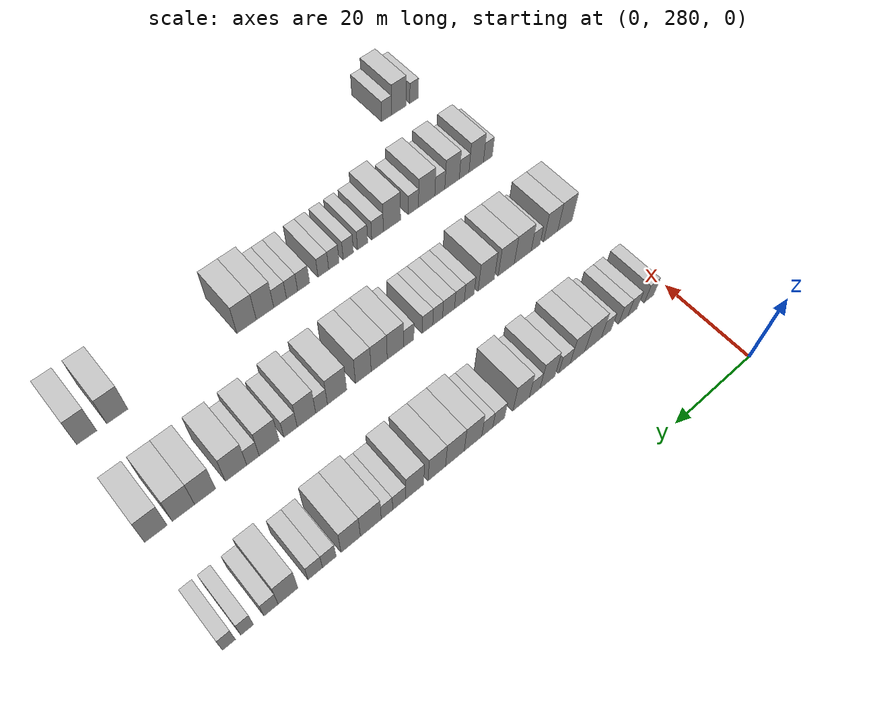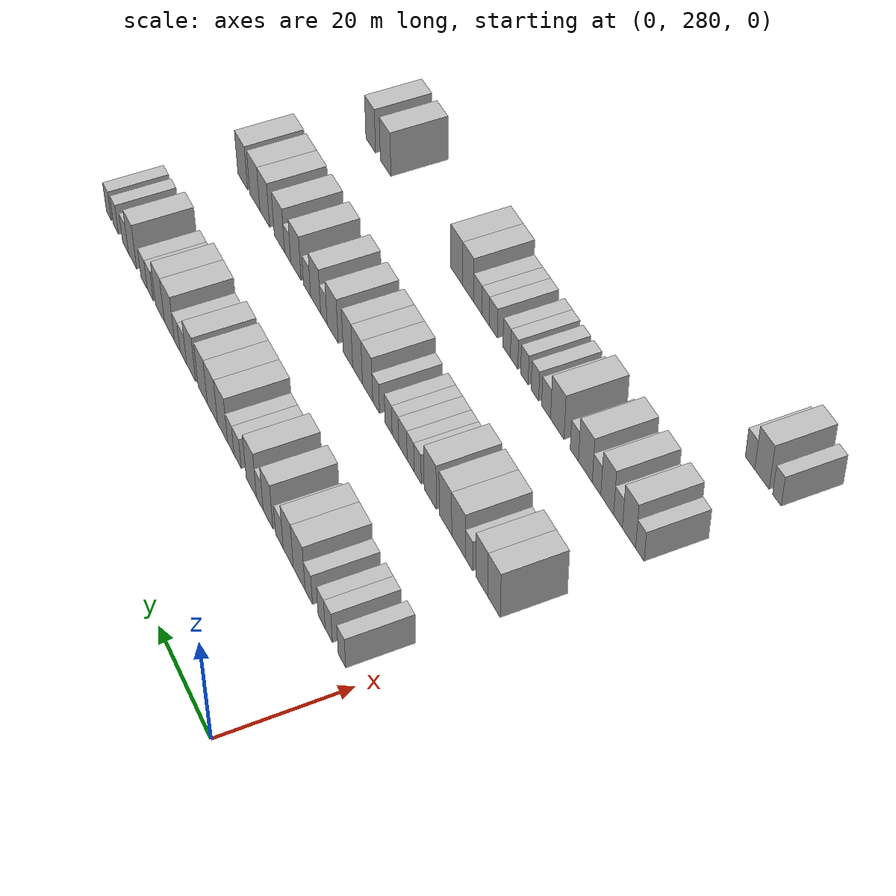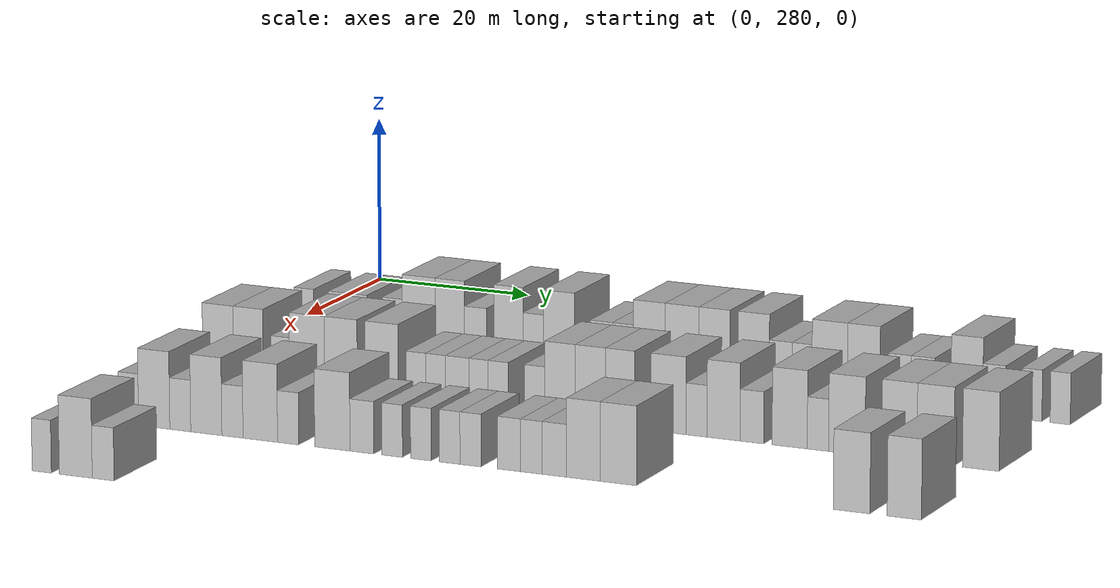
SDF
<sdf version="1.6">
 <world name="default">
  <model name="building_154">
   <static>1</static>
   <pose>25.0000 284.6553 0 0.000000 0.000000 0.000000</pose>
   <link name="link">
    <pose>0 0 3.00 0 0 0</pose>
    <collision name="collision"><geometry><box><size>10.0000 2.5857 6.0000</size></box></geometry></collision>
    <visual name="visual">
     <cast_shadows>0</cast_shadows>
     <geometry><box><size>10.0000 2.5857 6.0000</size></box></geometry>
     <material>
      <script>
       <uri>model://HANNAS_wall/materials/scripts</uri>
       <uri>model://HANNAS_wall/materials/textures</uri>
       <name>vrc/HANNAS_wall</name>
      </script>
     </material>
    </visual>
   </link>
  </model>
  <model name="building_155">
   <static>1</static>
   <pose>25.0000 289.2299 0 0.000000 0.000000 0.000000</pose>
   <link name="link">
    <pose>0 0 3.00 0 0 0</pose>
    <collision name="collision"><geometry><box><size>10.0000 2.5634 6.0000</size></box></geometry></collision>
    <visual name="visual">
     <cast_shadows>0</cast_shadows>
     <geometry><box><size>10.0000 2.5634 6.0000</size></box></geometry>
     <material>
      <script>
       <uri>model://HANNAS_wall/materials/scripts</uri>
       <uri>model://HANNAS_wall/materials/textures</uri>
       <name>vrc/HANNAS_wall</name>
      </script>
     </material>
    </visual>
   </link>
  </model>
  <model name="building_156">
   <static>1</static>
   <pose>25.0000 291.7491 0 0.000000 0.000000 0.000000</pose>
   <link name="link">
    <pose>0 0 3.00 0 0 0</pose>
    <collision name="collision"><geometry><box><size>10.0000 2.4751 6.0000</size></box></geometry></collision>
    <visual name="visual">
     <cast_shadows>0</cast_shadows>
     <geometry><box><size>10.0000 2.4751 6.0000</size></box></geometry>
     <material>
      <script>
       <uri>model://HANNAS_wall/materials/scripts</uri>
       <uri>model://HANNAS_wall/materials/textures</uri>
       <name>vrc/HANNAS_wall</name>
      </script>
     </material>
    </visual>
   </link>
  </model>
  <model name="building_157">
   <static>1</static>
   <pose>25.0000 296.3122 0 0.000000 0.000000 0.000000</pose>
   <link name="link">
    <pose>0 0 3.00 0 0 0</pose>
    <collision name="collision"><geometry><box><size>10.0000 2.6510 6.0000</size></box></geometry></collision>
    <visual name="visual">
     <cast_shadows>0</cast_shadows>
     <geometry><box><size>10.0000 2.6510 6.0000</size></box></geometry>
     <material>
      <script>
       <uri>model://HANNAS_wall/materials/scripts</uri>
       <uri>model://HANNAS_wall/materials/textures</uri>
       <name>vrc/HANNAS_wall</name>
      </script>
     </material>
    </visual>
   </link>
  </model>
  <model name="building_158">
   <static>1</static>
   <pose>25.0000 299.7902 0 0.000000 0.000000 0.000000</pose>
   <link name="link">
    <pose>0 0 4.50 0 0 0</pose>
    <collision name="collision"><geometry><box><size>10.0000 4.3050 9.0000</size></box></geometry></collision>
    <visual name="visual">
     <cast_shadows>0</cast_shadows>
     <geometry><box><size>10.0000 4.3050 9.0000</size></box></geometry>
     <material>
      <script>
       <uri>model://HANNAS_wall/materials/scripts</uri>
       <uri>model://HANNAS_wall/materials/textures</uri>
       <name>vrc/HANNAS_wall</name>
      </script>
     </material>
    </visual>
   </link>
  </model>
  <model name="building_159">
   <static>1</static>
   <pose>25.0000 303.8301 0 0.000000 0.000000 0.000000</pose>
   <link name="link">
    <pose>0 0 4.50 0 0 0</pose>
    <collision name="collision"><geometry><box><size>10.0000 3.7749 9.0000</size></box></geometry></collision>
    <visual name="visual">
     <cast_shadows>0</cast_shadows>
     <geometry><box><size>10.0000 3.7749 9.0000</size></box></geometry>
     <material>
      <script>
       <uri>model://HANNAS_wall/materials/scripts</uri>
       <uri>model://HANNAS_wall/materials/textures</uri>
       <name>vrc/HANNAS_wall</name>
      </script>
     </material>
    </visual>
   </link>
  </model>
  <model name="building_160">
   <static>1</static>
   <pose>25.0000 307.1390 0 0.000000 0.000000 0.000000</pose>
   <link name="link">
    <pose>0 0 3.00 0 0 0</pose>
    <collision name="collision"><geometry><box><size>10.0000 2.8428 6.0000</size></box></geometry></collision>
    <visual name="visual">
     <cast_shadows>0</cast_shadows>
     <geometry><box><size>10.0000 2.8428 6.0000</size></box></geometry>
     <material>
      <script>
       <uri>model://HANNAS_wall/materials/scripts</uri>
       <uri>model://HANNAS_wall/materials/textures</uri>
       <name>vrc/HANNAS_wall</name>
      </script>
     </material>
    </visual>
   </link>
  </model>
  <model name="building_161">
   <static>1</static>
   <pose>25.0000 311.4303 0 0.000000 0.000000 0.000000</pose>
   <link name="link">
    <pose>0 0 4.50 0 0 0</pose>
    <collision name="collision"><geometry><box><size>10.0000 3.7398 9.0000</size></box></geometry></collision>
    <visual name="visual">
     <cast_shadows>0</cast_shadows>
     <geometry><box><size>10.0000 3.7398 9.0000</size></box></geometry>
     <material>
      <script>
       <uri>model://HANNAS_wall/materials/scripts</uri>
       <uri>model://HANNAS_wall/materials/textures</uri>
       <name>vrc/HANNAS_wall</name>
      </script>
     </material>
    </visual>
   </link>
  </model>
  <model name="building_162">
   <static>1</static>
   <pose>25.0000 314.5998 0 0.000000 0.000000 0.000000</pose>
   <link name="link">
    <pose>0 0 3.00 0 0 0</pose>
    <collision name="collision"><geometry><box><size>10.0000 2.5992 6.0000</size></box></geometry></collision>
    <visual name="visual">
     <cast_shadows>0</cast_shadows>
     <geometry><box><size>10.0000 2.5992 6.0000</size></box></geometry>
     <material>
      <script>
       <uri>model://HANNAS_wall/materials/scripts</uri>
       <uri>model://HANNAS_wall/materials/textures</uri>
       <name>vrc/HANNAS_wall</name>
      </script>
     </material>
    </visual>
   </link>
  </model>
  <model name="building_163">
   <static>1</static>
   <pose>25.0000 317.8986 0 0.000000 0.000000 0.000000</pose>
   <link name="link">
    <pose>0 0 4.50 0 0 0</pose>
    <collision name="collision"><geometry><box><size>10.0000 3.9983 9.0000</size></box></geometry></collision>
    <visual name="visual">
     <cast_shadows>0</cast_shadows>
     <geometry><box><size>10.0000 3.9983 9.0000</size></box></geometry>
     <material>
      <script>
       <uri>model://HANNAS_wall/materials/scripts</uri>
       <uri>model://HANNAS_wall/materials/textures</uri>
       <name>vrc/HANNAS_wall</name>
      </script>
     </material>
    </visual>
   </link>
  </model>
  <model name="building_164">
   <static>1</static>
   <pose>25.0000 323.3163 0 0.000000 0.000000 0.000000</pose>
   <link name="link">
    <pose>0 0 3.00 0 0 0</pose>
    <collision name="collision"><geometry><box><size>10.0000 2.8372 6.0000</size></box></geometry></collision>
    <visual name="visual">
     <cast_shadows>0</cast_shadows>
     <geometry><box><size>10.0000 2.8372 6.0000</size></box></geometry>
     <material>
      <script>
       <uri>model://HANNAS_wall/materials/scripts</uri>
       <uri>model://HANNAS_wall/materials/textures</uri>
       <name>vrc/HANNAS_wall</name>
      </script>
     </material>
    </visual>
   </link>
  </model>
  <model name="building_165">
   <static>1</static>
   <pose>25.0000 326.0403 0 0.000000 0.000000 0.000000</pose>
   <link name="link">
    <pose>0 0 3.00 0 0 0</pose>
    <collision name="collision"><geometry><box><size>10.0000 2.6108 6.0000</size></box></geometry></collision>
    <visual name="visual">
     <cast_shadows>0</cast_shadows>
     <geometry><box><size>10.0000 2.6108 6.0000</size></box></geometry>
     <material>
      <script>
       <uri>model://HANNAS_wall/materials/scripts</uri>
       <uri>model://HANNAS_wall/materials/textures</uri>
       <name>vrc/HANNAS_wall</name>
      </script>
     </material>
    </visual>
   </link>
  </model>
  <model name="building_166">
   <static>1</static>
   <pose>25.0000 329.3801 0 0.000000 0.000000 0.000000</pose>
   <link name="link">
    <pose>0 0 4.50 0 0 0</pose>
    <collision name="collision"><geometry><box><size>10.0000 4.0687 9.0000</size></box></geometry></collision>
    <visual name="visual">
     <cast_shadows>0</cast_shadows>
     <geometry><box><size>10.0000 4.0687 9.0000</size></box></geometry>
     <material>
      <script>
       <uri>model://HANNAS_wall/materials/scripts</uri>
       <uri>model://HANNAS_wall/materials/textures</uri>
       <name>vrc/HANNAS_wall</name>
      </script>
     </material>
    </visual>
   </link>
  </model>
  <model name="building_167">
   <static>1</static>
   <pose>25.0000 333.5462 0 0.000000 0.000000 0.000000</pose>
   <link name="link">
    <pose>0 0 4.50 0 0 0</pose>
    <collision name="collision"><geometry><box><size>10.0000 4.2635 9.0000</size></box></geometry></collision>
    <visual name="visual">
     <cast_shadows>0</cast_shadows>
     <geometry><box><size>10.0000 4.2635 9.0000</size></box></geometry>
     <material>
      <script>
       <uri>model://HANNAS_wall/materials/scripts</uri>
       <uri>model://HANNAS_wall/materials/textures</uri>
       <name>vrc/HANNAS_wall</name>
      </script>
     </material>
    </visual>
   </link>
  </model>
  <model name="building_168">
   <static>1</static>
   <pose>25.0000 337.6343 0 0.000000 0.000000 0.000000</pose>
   <link name="link">
    <pose>0 0 4.50 0 0 0</pose>
    <collision name="collision"><geometry><box><size>10.0000 3.9127 9.0000</size></box></geometry></collision>
    <visual name="visual">
     <cast_shadows>0</cast_shadows>
     <geometry><box><size>10.0000 3.9127 9.0000</size></box></geometry>
     <material>
      <script>
       <uri>model://HANNAS_wall/materials/scripts</uri>
       <uri>model://HANNAS_wall/materials/textures</uri>
       <name>vrc/HANNAS_wall</name>
      </script>
     </material>
    </visual>
   </link>
  </model>
  <model name="building_169">
   <static>1</static>
   <pose>25.0000 342.5507 0 0.000000 0.000000 0.000000</pose>
   <link name="link">
    <pose>0 0 4.50 0 0 0</pose>
    <collision name="collision"><geometry><box><size>10.0000 3.9201 9.0000</size></box></geometry></collision>
    <visual name="visual">
     <cast_shadows>0</cast_shadows>
     <geometry><box><size>10.0000 3.9201 9.0000</size></box></geometry>
     <material>
      <script>
       <uri>model://HANNAS_wall/materials/scripts</uri>
       <uri>model://HANNAS_wall/materials/textures</uri>
       <name>vrc/HANNAS_wall</name>
      </script>
     </material>
    </visual>
   </link>
  </model>
  <model name="building_170">
   <static>1</static>
   <pose>25.0000 345.9380 0 0.000000 0.000000 0.000000</pose>
   <link name="link">
    <pose>0 0 3.00 0 0 0</pose>
    <collision name="collision"><geometry><box><size>10.0000 2.8544 6.0000</size></box></geometry></collision>
    <visual name="visual">
     <cast_shadows>0</cast_shadows>
     <geometry><box><size>10.0000 2.8544 6.0000</size></box></geometry>
     <material>
      <script>
       <uri>model://HANNAS_wall/materials/scripts</uri>
       <uri>model://HANNAS_wall/materials/textures</uri>
       <name>vrc/HANNAS_wall</name>
      </script>
     </material>
    </visual>
   </link>
  </model>
  <model name="building_171">
   <static>1</static>
   <pose>25.0000 348.5909 0 0.000000 0.000000 0.000000</pose>
   <link name="link">
    <pose>0 0 3.00 0 0 0</pose>
    <collision name="collision"><geometry><box><size>10.0000 2.4515 6.0000</size></box></geometry></collision>
    <visual name="visual">
     <cast_shadows>0</cast_shadows>
     <geometry><box><size>10.0000 2.4515 6.0000</size></box></geometry>
     <material>
      <script>
       <uri>model://HANNAS_wall/materials/scripts</uri>
       <uri>model://HANNAS_wall/materials/textures</uri>
       <name>vrc/HANNAS_wall</name>
      </script>
     </material>
    </visual>
   </link>
  </model>
  <model name="building_172">
   <static>1</static>
   <pose>25.0000 352.0134 0 0.000000 0.000000 0.000000</pose>
   <link name="link">
    <pose>0 0 4.50 0 0 0</pose>
    <collision name="collision"><geometry><box><size>10.0000 4.3933 9.0000</size></box></geometry></collision>
    <visual name="visual">
     <cast_shadows>0</cast_shadows>
     <geometry><box><size>10.0000 4.3933 9.0000</size></box></geometry>
     <material>
      <script>
       <uri>model://HANNAS_wall/materials/scripts</uri>
       <uri>model://HANNAS_wall/materials/textures</uri>
       <name>vrc/HANNAS_wall</name>
      </script>
     </material>
    </visual>
   </link>
  </model>
  <model name="building_173">
   <static>1</static>
   <pose>25.0000 356.2227 0 0.000000 0.000000 0.000000</pose>
   <link name="link">
    <pose>0 0 4.50 0 0 0</pose>
    <collision name="collision"><geometry><box><size>10.0000 4.0253 9.0000</size></box></geometry></collision>
    <visual name="visual">
     <cast_shadows>0</cast_shadows>
     <geometry><box><size>10.0000 4.0253 9.0000</size></box></geometry>
     <material>
      <script>
       <uri>model://HANNAS_wall/materials/scripts</uri>
       <uri>model://HANNAS_wall/materials/textures</uri>
       <name>vrc/HANNAS_wall</name>
      </script>
     </material>
    </visual>
   </link>
  </model>
  <model name="building_174">
   <static>1</static>
   <pose>25.0000 360.6323 0 0.000000 0.000000 0.000000</pose>
   <link name="link">
    <pose>0 0 3.00 0 0 0</pose>
    <collision name="collision"><geometry><box><size>10.0000 2.7940 6.0000</size></box></geometry></collision>
    <visual name="visual">
     <cast_shadows>0</cast_shadows>
     <geometry><box><size>10.0000 2.7940 6.0000</size></box></geometry>
     <material>
      <script>
       <uri>model://HANNAS_wall/materials/scripts</uri>
       <uri>model://HANNAS_wall/materials/textures</uri>
       <name>vrc/HANNAS_wall</name>
      </script>
     </material>
    </visual>
   </link>
  </model>
  <model name="building_175">
   <static>1</static>
   <pose>25.0000 363.4857 0 0.000000 0.000000 0.000000</pose>
   <link name="link">
    <pose>0 0 3.00 0 0 0</pose>
    <collision name="collision"><geometry><box><size>10.0000 2.9128 6.0000</size></box></geometry></collision>
    <visual name="visual">
     <cast_shadows>0</cast_shadows>
     <geometry><box><size>10.0000 2.9128 6.0000</size></box></geometry>
     <material>
      <script>
       <uri>model://HANNAS_wall/materials/scripts</uri>
       <uri>model://HANNAS_wall/materials/textures</uri>
       <name>vrc/HANNAS_wall</name>
      </script>
     </material>
    </visual>
   </link>
  </model>
  <model name="building_176">
   <static>1</static>
   <pose>25.0000 368.8803 0 0.000000 0.000000 0.000000</pose>
   <link name="link">
    <pose>0 0 4.50 0 0 0</pose>
    <collision name="collision"><geometry><box><size>10.0000 3.8764 9.0000</size></box></geometry></collision>
    <visual name="visual">
     <cast_shadows>0</cast_shadows>
     <geometry><box><size>10.0000 3.8764 9.0000</size></box></geometry>
     <material>
      <script>
       <uri>model://HANNAS_wall/materials/scripts</uri>
       <uri>model://HANNAS_wall/materials/textures</uri>
       <name>vrc/HANNAS_wall</name>
      </script>
     </material>
    </visual>
   </link>
  </model>
  <model name="building_177">
   <static>1</static>
   <pose>25.0000 372.2030 0 0.000000 0.000000 0.000000</pose>
   <link name="link">
    <pose>0 0 3.00 0 0 0</pose>
    <collision name="collision"><geometry><box><size>10.0000 2.7691 6.0000</size></box></geometry></collision>
    <visual name="visual">
     <cast_shadows>0</cast_shadows>
     <geometry><box><size>10.0000 2.7691 6.0000</size></box></geometry>
     <material>
      <script>
       <uri>model://HANNAS_wall/materials/scripts</uri>
       <uri>model://HANNAS_wall/materials/textures</uri>
       <name>vrc/HANNAS_wall</name>
      </script>
     </material>
    </visual>
   </link>
  </model>
  <model name="building_178">
   <static>1</static>
   <pose>25.0000 376.7989 0 0.000000 0.000000 0.000000</pose>
   <link name="link">
    <pose>0 0 3.00 0 0 0</pose>
    <collision name="collision"><geometry><box><size>10.0000 2.4228 6.0000</size></box></geometry></collision>
    <visual name="visual">
     <cast_shadows>0</cast_shadows>
     <geometry><box><size>10.0000 2.4228 6.0000</size></box></geometry>
     <material>
      <script>
       <uri>model://HANNAS_wall/materials/scripts</uri>
       <uri>model://HANNAS_wall/materials/textures</uri>
       <name>vrc/HANNAS_wall</name>
      </script>
     </material>
    </visual>
   </link>
  </model>
  <model name="building_179">
   <static>1</static>
   <pose>25.0000 380.2226 0 0.000000 0.000000 0.000000</pose>
   <link name="link">
    <pose>0 0 3.00 0 0 0</pose>
    <collision name="collision"><geometry><box><size>10.0000 2.4246 6.0000</size></box></geometry></collision>
    <visual name="visual">
     <cast_shadows>0</cast_shadows>
     <geometry><box><size>10.0000 2.4246 6.0000</size></box></geometry>
     <material>
      <script>
       <uri>model://HANNAS_wall/materials/scripts</uri>
       <uri>model://HANNAS_wall/materials/textures</uri>
       <name>vrc/HANNAS_wall</name>
      </script>
     </material>
    </visual>
   </link>
  </model>
  <model name="building_336">
   <static>1</static>
   <pose>47.0000 284.6167 0 0.000000 0.000000 0.000000</pose>
   <link name="link">
    <pose>0 0 4.50 0 0 0</pose>
    <collision name="collision"><geometry><box><size>10.0000 3.9926 9.0000</size></box></geometry></collision>
    <visual name="visual">
     <cast_shadows>0</cast_shadows>
     <geometry><box><size>10.0000 3.9926 9.0000</size></box></geometry>
     <material>
      <script>
       <uri>model://HANNAS_wall/materials/scripts</uri>
       <uri>model://HANNAS_wall/materials/textures</uri>
       <name>vrc/HANNAS_wall</name>
      </script>
     </material>
    </visual>
   </link>
  </model>
  <model name="building_337">
   <static>1</static>
   <pose>47.0000 288.5398 0 0.000000 0.000000 0.000000</pose>
   <link name="link">
    <pose>0 0 4.50 0 0 0</pose>
    <collision name="collision"><geometry><box><size>10.0000 3.8535 9.0000</size></box></geometry></collision>
    <visual name="visual">
     <cast_shadows>0</cast_shadows>
     <geometry><box><size>10.0000 3.8535 9.0000</size></box></geometry>
     <material>
      <script>
       <uri>model://HANNAS_wall/materials/scripts</uri>
       <uri>model://HANNAS_wall/materials/textures</uri>
       <name>vrc/HANNAS_wall</name>
      </script>
     </material>
    </visual>
   </link>
  </model>
  <model name="building_338">
   <static>1</static>
   <pose>47.0000 292.6702 0 0.000000 0.000000 0.000000</pose>
   <link name="link">
    <pose>0 0 3.00 0 0 0</pose>
    <collision name="collision"><geometry><box><size>10.0000 2.4073 6.0000</size></box></geometry></collision>
    <visual name="visual">
     <cast_shadows>0</cast_shadows>
     <geometry><box><size>10.0000 2.4073 6.0000</size></box></geometry>
     <material>
      <script>
       <uri>model://HANNAS_wall/materials/scripts</uri>
       <uri>model://HANNAS_wall/materials/textures</uri>
       <name>vrc/HANNAS_wall</name>
      </script>
     </material>
    </visual>
   </link>
  </model>
  <model name="building_339">
   <static>1</static>
   <pose>47.0000 296.1190 0 0.000000 0.000000 0.000000</pose>
   <link name="link">
    <pose>0 0 4.50 0 0 0</pose>
    <collision name="collision"><geometry><box><size>10.0000 4.4903 9.0000</size></box></geometry></collision>
    <visual name="visual">
     <cast_shadows>0</cast_shadows>
     <geometry><box><size>10.0000 4.4903 9.0000</size></box></geometry>
     <material>
      <script>
       <uri>model://HANNAS_wall/materials/scripts</uri>
       <uri>model://HANNAS_wall/materials/textures</uri>
       <name>vrc/HANNAS_wall</name>
      </script>
     </material>
    </visual>
   </link>
  </model>
  <model name="building_340">
   <static>1</static>
   <pose>47.0000 300.4693 0 0.000000 0.000000 0.000000</pose>
   <link name="link">
    <pose>0 0 4.50 0 0 0</pose>
    <collision name="collision"><geometry><box><size>10.0000 4.2103 9.0000</size></box></geometry></collision>
    <visual name="visual">
     <cast_shadows>0</cast_shadows>
     <geometry><box><size>10.0000 4.2103 9.0000</size></box></geometry>
     <material>
      <script>
       <uri>model://HANNAS_wall/materials/scripts</uri>
       <uri>model://HANNAS_wall/materials/textures</uri>
       <name>vrc/HANNAS_wall</name>
      </script>
     </material>
    </visual>
   </link>
  </model>
  <model name="building_341">
   <static>1</static>
   <pose>47.0000 305.6730 0 0.000000 0.000000 0.000000</pose>
   <link name="link">
    <pose>0 0 4.50 0 0 0</pose>
    <collision name="collision"><geometry><box><size>10.0000 4.1970 9.0000</size></box></geometry></collision>
    <visual name="visual">
     <cast_shadows>0</cast_shadows>
     <geometry><box><size>10.0000 4.1970 9.0000</size></box></geometry>
     <material>
      <script>
       <uri>model://HANNAS_wall/materials/scripts</uri>
       <uri>model://HANNAS_wall/materials/textures</uri>
       <name>vrc/HANNAS_wall</name>
      </script>
     </material>
    </visual>
   </link>
  </model>
  <model name="building_342">
   <static>1</static>
   <pose>47.0000 310.0267 0 0.000000 0.000000 0.000000</pose>
   <link name="link">
    <pose>0 0 3.00 0 0 0</pose>
    <collision name="collision"><geometry><box><size>10.0000 2.5104 6.0000</size></box></geometry></collision>
    <visual name="visual">
     <cast_shadows>0</cast_shadows>
     <geometry><box><size>10.0000 2.5104 6.0000</size></box></geometry>
     <material>
      <script>
       <uri>model://HANNAS_wall/materials/scripts</uri>
       <uri>model://HANNAS_wall/materials/textures</uri>
       <name>vrc/HANNAS_wall</name>
      </script>
     </material>
    </visual>
   </link>
  </model>
  <model name="building_343">
   <static>1</static>
   <pose>47.0000 312.5092 0 0.000000 0.000000 0.000000</pose>
   <link name="link">
    <pose>0 0 3.00 0 0 0</pose>
    <collision name="collision"><geometry><box><size>10.0000 2.4545 6.0000</size></box></geometry></collision>
    <visual name="visual">
     <cast_shadows>0</cast_shadows>
     <geometry><box><size>10.0000 2.4545 6.0000</size></box></geometry>
     <material>
      <script>
       <uri>model://HANNAS_wall/materials/scripts</uri>
       <uri>model://HANNAS_wall/materials/textures</uri>
       <name>vrc/HANNAS_wall</name>
      </script>
     </material>
    </visual>
   </link>
  </model>
  <model name="building_344">
   <static>1</static>
   <pose>47.0000 315.2274 0 0.000000 0.000000 0.000000</pose>
   <link name="link">
    <pose>0 0 3.00 0 0 0</pose>
    <collision name="collision"><geometry><box><size>10.0000 2.9819 6.0000</size></box></geometry></collision>
    <visual name="visual">
     <cast_shadows>0</cast_shadows>
     <geometry><box><size>10.0000 2.9819 6.0000</size></box></geometry>
     <material>
      <script>
       <uri>model://HANNAS_wall/materials/scripts</uri>
       <uri>model://HANNAS_wall/materials/textures</uri>
       <name>vrc/HANNAS_wall</name>
      </script>
     </material>
    </visual>
   </link>
  </model>
  <model name="building_345">
   <static>1</static>
   <pose>47.0000 317.9204 0 0.000000 0.000000 0.000000</pose>
   <link name="link">
    <pose>0 0 3.00 0 0 0</pose>
    <collision name="collision"><geometry><box><size>10.0000 2.4041 6.0000</size></box></geometry></collision>
    <visual name="visual">
     <cast_shadows>0</cast_shadows>
     <geometry><box><size>10.0000 2.4041 6.0000</size></box></geometry>
     <material>
      <script>
       <uri>model://HANNAS_wall/materials/scripts</uri>
       <uri>model://HANNAS_wall/materials/textures</uri>
       <name>vrc/HANNAS_wall</name>
      </script>
     </material>
    </visual>
   </link>
  </model>
  <model name="building_346">
   <static>1</static>
   <pose>47.0000 320.4099 0 0.000000 0.000000 0.000000</pose>
   <link name="link">
    <pose>0 0 3.00 0 0 0</pose>
    <collision name="collision"><geometry><box><size>10.0000 2.5749 6.0000</size></box></geometry></collision>
    <visual name="visual">
     <cast_shadows>0</cast_shadows>
     <geometry><box><size>10.0000 2.5749 6.0000</size></box></geometry>
     <material>
      <script>
       <uri>model://HANNAS_wall/materials/scripts</uri>
       <uri>model://HANNAS_wall/materials/textures</uri>
       <name>vrc/HANNAS_wall</name>
      </script>
     </material>
    </visual>
   </link>
  </model>
  <model name="building_347">
   <static>1</static>
   <pose>47.0000 324.9579 0 0.000000 0.000000 0.000000</pose>
   <link name="link">
    <pose>0 0 3.00 0 0 0</pose>
    <collision name="collision"><geometry><box><size>10.0000 2.5209 6.0000</size></box></geometry></collision>
    <visual name="visual">
     <cast_shadows>0</cast_shadows>
     <geometry><box><size>10.0000 2.5209 6.0000</size></box></geometry>
     <material>
      <script>
       <uri>model://HANNAS_wall/materials/scripts</uri>
       <uri>model://HANNAS_wall/materials/textures</uri>
       <name>vrc/HANNAS_wall</name>
      </script>
     </material>
    </visual>
   </link>
  </model>
  <model name="building_348">
   <static>1</static>
   <pose>47.0000 328.1282 0 0.000000 0.000000 0.000000</pose>
   <link name="link">
    <pose>0 0 4.50 0 0 0</pose>
    <collision name="collision"><geometry><box><size>10.0000 3.8198 9.0000</size></box></geometry></collision>
    <visual name="visual">
     <cast_shadows>0</cast_shadows>
     <geometry><box><size>10.0000 3.8198 9.0000</size></box></geometry>
     <material>
      <script>
       <uri>model://HANNAS_wall/materials/scripts</uri>
       <uri>model://HANNAS_wall/materials/textures</uri>
       <name>vrc/HANNAS_wall</name>
      </script>
     </material>
    </visual>
   </link>
  </model>
  <model name="building_349">
   <static>1</static>
   <pose>47.0000 331.9031 0 0.000000 0.000000 0.000000</pose>
   <link name="link">
    <pose>0 0 4.50 0 0 0</pose>
    <collision name="collision"><geometry><box><size>10.0000 3.7299 9.0000</size></box></geometry></collision>
    <visual name="visual">
     <cast_shadows>0</cast_shadows>
     <geometry><box><size>10.0000 3.7299 9.0000</size></box></geometry>
     <material>
      <script>
       <uri>model://HANNAS_wall/materials/scripts</uri>
       <uri>model://HANNAS_wall/materials/textures</uri>
       <name>vrc/HANNAS_wall</name>
      </script>
     </material>
    </visual>
   </link>
  </model>
  <model name="building_350">
   <static>1</static>
   <pose>47.0000 335.5714 0 0.000000 0.000000 0.000000</pose>
   <link name="link">
    <pose>0 0 4.50 0 0 0</pose>
    <collision name="collision"><geometry><box><size>10.0000 3.6066 9.0000</size></box></geometry></collision>
    <visual name="visual">
     <cast_shadows>0</cast_shadows>
     <geometry><box><size>10.0000 3.6066 9.0000</size></box></geometry>
     <material>
      <script>
       <uri>model://HANNAS_wall/materials/scripts</uri>
       <uri>model://HANNAS_wall/materials/textures</uri>
       <name>vrc/HANNAS_wall</name>
      </script>
     </material>
    </visual>
   </link>
  </model>
  <model name="building_351">
   <static>1</static>
   <pose>47.0000 341.5369 0 0.000000 0.000000 0.000000</pose>
   <link name="link">
    <pose>0 0 4.50 0 0 0</pose>
    <collision name="collision"><geometry><box><size>10.0000 4.3245 9.0000</size></box></geometry></collision>
    <visual name="visual">
     <cast_shadows>0</cast_shadows>
     <geometry><box><size>10.0000 4.3245 9.0000</size></box></geometry>
     <material>
      <script>
       <uri>model://HANNAS_wall/materials/scripts</uri>
       <uri>model://HANNAS_wall/materials/textures</uri>
       <name>vrc/HANNAS_wall</name>
      </script>
     </material>
    </visual>
   </link>
  </model>
  <model name="building_352">
   <static>1</static>
   <pose>47.0000 344.9947 0 0.000000 0.000000 0.000000</pose>
   <link name="link">
    <pose>0 0 3.00 0 0 0</pose>
    <collision name="collision"><geometry><box><size>10.0000 2.5911 6.0000</size></box></geometry></collision>
    <visual name="visual">
     <cast_shadows>0</cast_shadows>
     <geometry><box><size>10.0000 2.5911 6.0000</size></box></geometry>
     <material>
      <script>
       <uri>model://HANNAS_wall/materials/scripts</uri>
       <uri>model://HANNAS_wall/materials/textures</uri>
       <name>vrc/HANNAS_wall</name>
      </script>
     </material>
    </visual>
   </link>
  </model>
  <model name="building_353">
   <static>1</static>
   <pose>47.0000 348.3053 0 0.000000 0.000000 0.000000</pose>
   <link name="link">
    <pose>0 0 4.50 0 0 0</pose>
    <collision name="collision"><geometry><box><size>10.0000 4.0300 9.0000</size></box></geometry></collision>
    <visual name="visual">
     <cast_shadows>0</cast_shadows>
     <geometry><box><size>10.0000 4.0300 9.0000</size></box></geometry>
     <material>
      <script>
       <uri>model://HANNAS_wall/materials/scripts</uri>
       <uri>model://HANNAS_wall/materials/textures</uri>
       <name>vrc/HANNAS_wall</name>
      </script>
     </material>
    </visual>
   </link>
  </model>
  <model name="building_354">
   <static>1</static>
   <pose>47.0000 351.7628 0 0.000000 0.000000 0.000000</pose>
   <link name="link">
    <pose>0 0 3.00 0 0 0</pose>
    <collision name="collision"><geometry><box><size>10.0000 2.8851 6.0000</size></box></geometry></collision>
    <visual name="visual">
     <cast_shadows>0</cast_shadows>
     <geometry><box><size>10.0000 2.8851 6.0000</size></box></geometry>
     <material>
      <script>
       <uri>model://HANNAS_wall/materials/scripts</uri>
       <uri>model://HANNAS_wall/materials/textures</uri>
       <name>vrc/HANNAS_wall</name>
      </script>
     </material>
    </visual>
   </link>
  </model>
  <model name="building_355">
   <static>1</static>
   <pose>47.0000 356.3292 0 0.000000 0.000000 0.000000</pose>
   <link name="link">
    <pose>0 0 4.50 0 0 0</pose>
    <collision name="collision"><geometry><box><size>10.0000 4.2476 9.0000</size></box></geometry></collision>
    <visual name="visual">
     <cast_shadows>0</cast_shadows>
     <geometry><box><size>10.0000 4.2476 9.0000</size></box></geometry>
     <material>
      <script>
       <uri>model://HANNAS_wall/materials/scripts</uri>
       <uri>model://HANNAS_wall/materials/textures</uri>
       <name>vrc/HANNAS_wall</name>
      </script>
     </material>
    </visual>
   </link>
  </model>
  <model name="building_356">
   <static>1</static>
   <pose>47.0000 359.7439 0 0.000000 0.000000 0.000000</pose>
   <link name="link">
    <pose>0 0 3.00 0 0 0</pose>
    <collision name="collision"><geometry><box><size>10.0000 2.5819 6.0000</size></box></geometry></collision>
    <visual name="visual">
     <cast_shadows>0</cast_shadows>
     <geometry><box><size>10.0000 2.5819 6.0000</size></box></geometry>
     <material>
      <script>
       <uri>model://HANNAS_wall/materials/scripts</uri>
       <uri>model://HANNAS_wall/materials/textures</uri>
       <name>vrc/HANNAS_wall</name>
      </script>
     </material>
    </visual>
   </link>
  </model>
  <model name="building_357">
   <static>1</static>
   <pose>47.0000 363.2291 0 0.000000 0.000000 0.000000</pose>
   <link name="link">
    <pose>0 0 4.50 0 0 0</pose>
    <collision name="collision"><geometry><box><size>10.0000 4.3886 9.0000</size></box></geometry></collision>
    <visual name="visual">
     <cast_shadows>0</cast_shadows>
     <geometry><box><size>10.0000 4.3886 9.0000</size></box></geometry>
     <material>
      <script>
       <uri>model://HANNAS_wall/materials/scripts</uri>
       <uri>model://HANNAS_wall/materials/textures</uri>
       <name>vrc/HANNAS_wall</name>
      </script>
     </material>
    </visual>
   </link>
  </model>
  <model name="building_358">
   <static>1</static>
   <pose>47.0000 369.5216 0 0.000000 0.000000 0.000000</pose>
   <link name="link">
    <pose>0 0 4.50 0 0 0</pose>
    <collision name="collision"><geometry><box><size>10.0000 4.1963 9.0000</size></box></geometry></collision>
    <visual name="visual">
     <cast_shadows>0</cast_shadows>
     <geometry><box><size>10.0000 4.1963 9.0000</size></box></geometry>
     <material>
      <script>
       <uri>model://HANNAS_wall/materials/scripts</uri>
       <uri>model://HANNAS_wall/materials/textures</uri>
       <name>vrc/HANNAS_wall</name>
      </script>
     </material>
    </visual>
   </link>
  </model>
  <model name="building_359">
   <static>1</static>
   <pose>47.0000 373.8211 0 0.000000 0.000000 0.000000</pose>
   <link name="link">
    <pose>0 0 4.50 0 0 0</pose>
    <collision name="collision"><geometry><box><size>10.0000 4.4028 9.0000</size></box></geometry></collision>
    <visual name="visual">
     <cast_shadows>0</cast_shadows>
     <geometry><box><size>10.0000 4.4028 9.0000</size></box></geometry>
     <material>
      <script>
       <uri>model://HANNAS_wall/materials/scripts</uri>
       <uri>model://HANNAS_wall/materials/textures</uri>
       <name>vrc/HANNAS_wall</name>
      </script>
     </material>
    </visual>
   </link>
  </model>
  <model name="building_360">
   <static>1</static>
   <pose>47.0000 379.1908 0 0.000000 0.000000 0.000000</pose>
   <link name="link">
    <pose>0 0 4.50 0 0 0</pose>
    <collision name="collision"><geometry><box><size>10.0000 4.3367 9.0000</size></box></geometry></collision>
    <visual name="visual">
     <cast_shadows>0</cast_shadows>
     <geometry><box><size>10.0000 4.3367 9.0000</size></box></geometry>
     <material>
      <script>
       <uri>model://HANNAS_wall/materials/scripts</uri>
       <uri>model://HANNAS_wall/materials/textures</uri>
       <name>vrc/HANNAS_wall</name>
      </script>
     </material>
    </visual>
   </link>
  </model>
  <model name="building_518">
   <static>1</static>
   <pose>69.0000 284.6319 0 0.000000 0.000000 0.000000</pose>
   <link name="link">
    <pose>0 0 3.00 0 0 0</pose>
    <collision name="collision"><geometry><box><size>10.0000 2.5177 6.0000</size></box></geometry></collision>
    <visual name="visual">
     <cast_shadows>0</cast_shadows>
     <geometry><box><size>10.0000 2.5177 6.0000</size></box></geometry>
     <material>
      <script>
       <uri>model://HANNAS_wall/materials/scripts</uri>
       <uri>model://HANNAS_wall/materials/textures</uri>
       <name>vrc/HANNAS_wall</name>
      </script>
     </material>
    </visual>
   </link>
  </model>
  <model name="building_519">
   <static>1</static>
   <pose>69.0000 287.8826 0 0.000000 0.000000 0.000000</pose>
   <link name="link">
    <pose>0 0 4.50 0 0 0</pose>
    <collision name="collision"><geometry><box><size>10.0000 3.9838 9.0000</size></box></geometry></collision>
    <visual name="visual">
     <cast_shadows>0</cast_shadows>
     <geometry><box><size>10.0000 3.9838 9.0000</size></box></geometry>
     <material>
      <script>
       <uri>model://HANNAS_wall/materials/scripts</uri>
       <uri>model://HANNAS_wall/materials/textures</uri>
       <name>vrc/HANNAS_wall</name>
      </script>
     </material>
    </visual>
   </link>
  </model>
  <model name="building_520">
   <static>1</static>
   <pose>69.0000 291.2044 0 0.000000 0.000000 0.000000</pose>
   <link name="link">
    <pose>0 0 3.00 0 0 0</pose>
    <collision name="collision"><geometry><box><size>10.0000 2.6596 6.0000</size></box></geometry></collision>
    <visual name="visual">
     <cast_shadows>0</cast_shadows>
     <geometry><box><size>10.0000 2.6596 6.0000</size></box></geometry>
     <material>
      <script>
       <uri>model://HANNAS_wall/materials/scripts</uri>
       <uri>model://HANNAS_wall/materials/textures</uri>
       <name>vrc/HANNAS_wall</name>
      </script>
     </material>
    </visual>
   </link>
  </model>
  <model name="building_521">
   <static>1</static>
   <pose>69.0000 294.4997 0 0.000000 0.000000 0.000000</pose>
   <link name="link">
    <pose>0 0 4.50 0 0 0</pose>
    <collision name="collision"><geometry><box><size>10.0000 3.9310 9.0000</size></box></geometry></collision>
    <visual name="visual">
     <cast_shadows>0</cast_shadows>
     <geometry><box><size>10.0000 3.9310 9.0000</size></box></geometry>
     <material>
      <script>
       <uri>model://HANNAS_wall/materials/scripts</uri>
       <uri>model://HANNAS_wall/materials/textures</uri>
       <name>vrc/HANNAS_wall</name>
      </script>
     </material>
    </visual>
   </link>
  </model>
  <model name="building_522">
   <static>1</static>
   <pose>69.0000 297.8015 0 0.000000 0.000000 0.000000</pose>
   <link name="link">
    <pose>0 0 3.00 0 0 0</pose>
    <collision name="collision"><geometry><box><size>10.0000 2.6726 6.0000</size></box></geometry></collision>
    <visual name="visual">
     <cast_shadows>0</cast_shadows>
     <geometry><box><size>10.0000 2.6726 6.0000</size></box></geometry>
     <material>
      <script>
       <uri>model://HANNAS_wall/materials/scripts</uri>
       <uri>model://HANNAS_wall/materials/textures</uri>
       <name>vrc/HANNAS_wall</name>
      </script>
     </material>
    </visual>
   </link>
  </model>
  <model name="building_523">
   <static>1</static>
   <pose>69.0000 301.3047 0 0.000000 0.000000 0.000000</pose>
   <link name="link">
    <pose>0 0 4.50 0 0 0</pose>
    <collision name="collision"><geometry><box><size>10.0000 4.3339 9.0000</size></box></geometry></collision>
    <visual name="visual">
     <cast_shadows>0</cast_shadows>
     <geometry><box><size>10.0000 4.3339 9.0000</size></box></geometry>
     <material>
      <script>
       <uri>model://HANNAS_wall/materials/scripts</uri>
       <uri>model://HANNAS_wall/materials/textures</uri>
       <name>vrc/HANNAS_wall</name>
      </script>
     </material>
    </visual>
   </link>
  </model>
  <model name="building_524">
   <static>1</static>
   <pose>69.0000 304.7970 0 0.000000 0.000000 0.000000</pose>
   <link name="link">
    <pose>0 0 3.00 0 0 0</pose>
    <collision name="collision"><geometry><box><size>10.0000 2.6506 6.0000</size></box></geometry></collision>
    <visual name="visual">
     <cast_shadows>0</cast_shadows>
     <geometry><box><size>10.0000 2.6506 6.0000</size></box></geometry>
     <material>
      <script>
       <uri>model://HANNAS_wall/materials/scripts</uri>
       <uri>model://HANNAS_wall/materials/textures</uri>
       <name>vrc/HANNAS_wall</name>
      </script>
     </material>
    </visual>
   </link>
  </model>
  <model name="building_525">
   <static>1</static>
   <pose>69.0000 310.3169 0 0.000000 0.000000 0.000000</pose>
   <link name="link">
    <pose>0 0 4.50 0 0 0</pose>
    <collision name="collision"><geometry><box><size>10.0000 4.3893 9.0000</size></box></geometry></collision>
    <visual name="visual">
     <cast_shadows>0</cast_shadows>
     <geometry><box><size>10.0000 4.3893 9.0000</size></box></geometry>
     <material>
      <script>
       <uri>model://HANNAS_wall/materials/scripts</uri>
       <uri>model://HANNAS_wall/materials/textures</uri>
       <name>vrc/HANNAS_wall</name>
      </script>
     </material>
    </visual>
   </link>
  </model>
  <model name="building_526">
   <static>1</static>
   <pose>69.0000 313.9909 0 0.000000 0.000000 0.000000</pose>
   <link name="link">
    <pose>0 0 3.00 0 0 0</pose>
    <collision name="collision"><geometry><box><size>10.0000 2.9587 6.0000</size></box></geometry></collision>
    <visual name="visual">
     <cast_shadows>0</cast_shadows>
     <geometry><box><size>10.0000 2.9587 6.0000</size></box></geometry>
     <material>
      <script>
       <uri>model://HANNAS_wall/materials/scripts</uri>
       <uri>model://HANNAS_wall/materials/textures</uri>
       <name>vrc/HANNAS_wall</name>
      </script>
     </material>
    </visual>
   </link>
  </model>
  <model name="building_527">
   <static>1</static>
   <pose>69.0000 317.7399 0 0.000000 0.000000 0.000000</pose>
   <link name="link">
    <pose>0 0 3.00 0 0 0</pose>
    <collision name="collision"><geometry><box><size>10.0000 2.5393 6.0000</size></box></geometry></collision>
    <visual name="visual">
     <cast_shadows>0</cast_shadows>
     <geometry><box><size>10.0000 2.5393 6.0000</size></box></geometry>
     <material>
      <script>
       <uri>model://HANNAS_wall/materials/scripts</uri>
       <uri>model://HANNAS_wall/materials/textures</uri>
       <name>vrc/HANNAS_wall</name>
      </script>
     </material>
    </visual>
   </link>
  </model>
  <model name="building_528">
   <static>1</static>
   <pose>69.0000 321.2751 0 0.000000 0.000000 0.000000</pose>
   <link name="link">
    <pose>0 0 3.00 0 0 0</pose>
    <collision name="collision"><geometry><box><size>10.0000 2.5312 6.0000</size></box></geometry></collision>
    <visual name="visual">
     <cast_shadows>0</cast_shadows>
     <geometry><box><size>10.0000 2.5312 6.0000</size></box></geometry>
     <material>
      <script>
       <uri>model://HANNAS_wall/materials/scripts</uri>
       <uri>model://HANNAS_wall/materials/textures</uri>
       <name>vrc/HANNAS_wall</name>
      </script>
     </material>
    </visual>
   </link>
  </model>
  <model name="building_529">
   <static>1</static>
   <pose>69.0000 324.8076 0 0.000000 0.000000 0.000000</pose>
   <link name="link">
    <pose>0 0 3.00 0 0 0</pose>
    <collision name="collision"><geometry><box><size>10.0000 2.5338 6.0000</size></box></geometry></collision>
    <visual name="visual">
     <cast_shadows>0</cast_shadows>
     <geometry><box><size>10.0000 2.5338 6.0000</size></box></geometry>
     <material>
      <script>
       <uri>model://HANNAS_wall/materials/scripts</uri>
       <uri>model://HANNAS_wall/materials/textures</uri>
       <name>vrc/HANNAS_wall</name>
      </script>
     </material>
    </visual>
   </link>
  </model>
  <model name="building_530">
   <static>1</static>
   <pose>69.0000 327.3609 0 0.000000 0.000000 0.000000</pose>
   <link name="link">
    <pose>0 0 3.00 0 0 0</pose>
    <collision name="collision"><geometry><box><size>10.0000 2.5728 6.0000</size></box></geometry></collision>
    <visual name="visual">
     <cast_shadows>0</cast_shadows>
     <geometry><box><size>10.0000 2.5728 6.0000</size></box></geometry>
     <material>
      <script>
       <uri>model://HANNAS_wall/materials/scripts</uri>
       <uri>model://HANNAS_wall/materials/textures</uri>
       <name>vrc/HANNAS_wall</name>
      </script>
     </material>
    </visual>
   </link>
  </model>
  <model name="building_531">
   <static>1</static>
   <pose>69.0000 332.0577 0 0.000000 0.000000 0.000000</pose>
   <link name="link">
    <pose>0 0 3.00 0 0 0</pose>
    <collision name="collision"><geometry><box><size>10.0000 2.8208 6.0000</size></box></geometry></collision>
    <visual name="visual">
     <cast_shadows>0</cast_shadows>
     <geometry><box><size>10.0000 2.8208 6.0000</size></box></geometry>
     <material>
      <script>
       <uri>model://HANNAS_wall/materials/scripts</uri>
       <uri>model://HANNAS_wall/materials/textures</uri>
       <name>vrc/HANNAS_wall</name>
      </script>
     </material>
    </visual>
   </link>
  </model>
  <model name="building_532">
   <static>1</static>
   <pose>69.0000 334.7744 0 0.000000 0.000000 0.000000</pose>
   <link name="link">
    <pose>0 0 3.00 0 0 0</pose>
    <collision name="collision"><geometry><box><size>10.0000 2.6126 6.0000</size></box></geometry></collision>
    <visual name="visual">
     <cast_shadows>0</cast_shadows>
     <geometry><box><size>10.0000 2.6126 6.0000</size></box></geometry>
     <material>
      <script>
       <uri>model://HANNAS_wall/materials/scripts</uri>
       <uri>model://HANNAS_wall/materials/textures</uri>
       <name>vrc/HANNAS_wall</name>
      </script>
     </material>
    </visual>
   </link>
  </model>
  <model name="building_533">
   <static>1</static>
   <pose>69.0000 337.5608 0 0.000000 0.000000 0.000000</pose>
   <link name="link">
    <pose>0 0 3.00 0 0 0</pose>
    <collision name="collision"><geometry><box><size>10.0000 2.9600 6.0000</size></box></geometry></collision>
    <visual name="visual">
     <cast_shadows>0</cast_shadows>
     <geometry><box><size>10.0000 2.9600 6.0000</size></box></geometry>
     <material>
      <script>
       <uri>model://HANNAS_wall/materials/scripts</uri>
       <uri>model://HANNAS_wall/materials/textures</uri>
       <name>vrc/HANNAS_wall</name>
      </script>
     </material>
    </visual>
   </link>
  </model>
  <model name="building_534">
   <static>1</static>
   <pose>69.0000 341.0470 0 0.000000 0.000000 0.000000</pose>
   <link name="link">
    <pose>0 0 4.50 0 0 0</pose>
    <collision name="collision"><geometry><box><size>10.0000 4.0124 9.0000</size></box></geometry></collision>
    <visual name="visual">
     <cast_shadows>0</cast_shadows>
     <geometry><box><size>10.0000 4.0124 9.0000</size></box></geometry>
     <material>
      <script>
       <uri>model://HANNAS_wall/materials/scripts</uri>
       <uri>model://HANNAS_wall/materials/textures</uri>
       <name>vrc/HANNAS_wall</name>
      </script>
     </material>
    </visual>
   </link>
  </model>
  <model name="building_535">
   <static>1</static>
   <pose>69.0000 345.2437 0 0.000000 0.000000 0.000000</pose>
   <link name="link">
    <pose>0 0 4.50 0 0 0</pose>
    <collision name="collision"><geometry><box><size>10.0000 4.3810 9.0000</size></box></geometry></collision>
    <visual name="visual">
     <cast_shadows>0</cast_shadows>
     <geometry><box><size>10.0000 4.3810 9.0000</size></box></geometry>
     <material>
      <script>
       <uri>model://HANNAS_wall/materials/scripts</uri>
       <uri>model://HANNAS_wall/materials/textures</uri>
       <name>vrc/HANNAS_wall</name>
      </script>
     </material>
    </visual>
   </link>
  </model>
  <model name="building_536">
   <static>1</static>
   <pose>69.0000 372.8520 0 0.000000 0.000000 0.000000</pose>
   <link name="link">
    <pose>0 0 4.50 0 0 0</pose>
    <collision name="collision"><geometry><box><size>10.0000 4.2786 9.0000</size></box></geometry></collision>
    <visual name="visual">
     <cast_shadows>0</cast_shadows>
     <geometry><box><size>10.0000 4.2786 9.0000</size></box></geometry>
     <material>
      <script>
       <uri>model://HANNAS_wall/materials/scripts</uri>
       <uri>model://HANNAS_wall/materials/textures</uri>
       <name>vrc/HANNAS_wall</name>
      </script>
     </material>
    </visual>
   </link>
  </model>
  <model name="building_537">
   <static>1</static>
   <pose>69.0000 378.9741 0 0.000000 0.000000 0.000000</pose>
   <link name="link">
    <pose>0 0 4.50 0 0 0</pose>
    <collision name="collision"><geometry><box><size>10.0000 3.9655 9.0000</size></box></geometry></collision>
    <visual name="visual">
     <cast_shadows>0</cast_shadows>
     <geometry><box><size>10.0000 3.9655 9.0000</size></box></geometry>
     <material>
      <script>
       <uri>model://HANNAS_wall/materials/scripts</uri>
       <uri>model://HANNAS_wall/materials/textures</uri>
       <name>vrc/HANNAS_wall</name>
      </script>
     </material>
    </visual>
   </link>
  </model>
  <model name="building_705">
   <static>1</static>
   <pose>91.0000 285.5534 0 0.000000 0.000000 0.000000</pose>
   <link name="link">
    <pose>0 0 3.00 0 0 0</pose>
    <collision name="collision"><geometry><box><size>10.0000 2.4073 6.0000</size></box></geometry></collision>
    <visual name="visual">
     <cast_shadows>0</cast_shadows>
     <geometry><box><size>10.0000 2.4073 6.0000</size></box></geometry>
     <material>
      <script>
       <uri>model://HANNAS_wall/materials/scripts</uri>
       <uri>model://HANNAS_wall/materials/textures</uri>
       <name>vrc/HANNAS_wall</name>
      </script>
     </material>
    </visual>
   </link>
  </model>
  <model name="building_706">
   <static>1</static>
   <pose>91.0000 289.8044 0 0.000000 0.000000 0.000000</pose>
   <link name="link">
    <pose>0 0 4.50 0 0 0</pose>
    <collision name="collision"><geometry><box><size>10.0000 4.0947 9.0000</size></box></geometry></collision>
    <visual name="visual">
     <cast_shadows>0</cast_shadows>
     <geometry><box><size>10.0000 4.0947 9.0000</size></box></geometry>
     <material>
      <script>
       <uri>model://HANNAS_wall/materials/scripts</uri>
       <uri>model://HANNAS_wall/materials/textures</uri>
       <name>vrc/HANNAS_wall</name>
      </script>
     </material>
    </visual>
   </link>
  </model>
  <model name="building_707">
   <static>1</static>
   <pose>91.0000 293.2114 0 0.000000 0.000000 0.000000</pose>
   <link name="link">
    <pose>0 0 3.00 0 0 0</pose>
    <collision name="collision"><geometry><box><size>10.0000 2.7192 6.0000</size></box></geometry></collision>
    <visual name="visual">
     <cast_shadows>0</cast_shadows>
     <geometry><box><size>10.0000 2.7192 6.0000</size></box></geometry>
     <material>
      <script>
       <uri>model://HANNAS_wall/materials/scripts</uri>
       <uri>model://HANNAS_wall/materials/textures</uri>
       <name>vrc/HANNAS_wall</name>
      </script>
     </material>
    </visual>
   </link>
  </model>
 </world>
</sdf>
